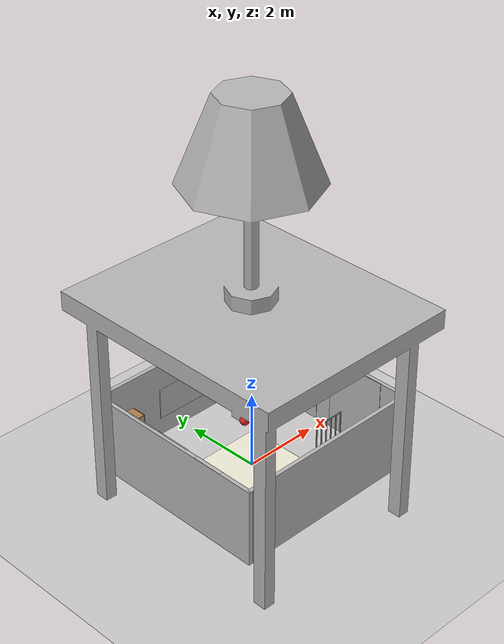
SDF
<sdf version="1.7">
 <world name="default">
  <light name="sun" type="directional">
   <pose>0 0 10 0 -0 0</pose>
   <diffuse>0.8 0.8 0.8 1</diffuse>
   <specular>0.2 0.2 0.2 1</specular>
   <attenuation>
    <range>1000</range>
    <constant>0.9</constant>
    <linear>0.01</linear>
    <quadratic>0.001</quadratic>
   </attenuation>
   <direction>-0.5 0.1 -0.9</direction>
   <spot><inner_angle>0</inner_angle><outer_angle>0</outer_angle><falloff>0</falloff></spot>
  </light>
  <model name="ground_plane">
   <static>1</static>
   <link name="link">
    <collision name="collision">
     <geometry><plane><normal>0 0 1</normal><size>100 100</size></plane></geometry>
     <surface>
      <contact><collide_bitmask>65535</collide_bitmask></contact>
      <friction><ode><mu>100</mu><mu2>50</mu2></ode></friction>
     </surface>
    </collision>
    <visual name="visual">
     <cast_shadows>0</cast_shadows>
     <geometry><plane><normal>0 0 1</normal><size>1 1</size></plane></geometry>
     <material>
      <script><uri>file://media/materials/scripts/gazebo.material</uri><name>Gazebo/Grey</name></script>
     </material>
    </visual>
   </link>
  </model>
  <gravity>0 0 -9.8</gravity>
  <magnetic_field>6e-06 2.3e-05 -4.2e-05</magnetic_field>
  <atmosphere type="adiabatic"/>
  <physics type="ode">
   <max_step_size>0.001</max_step_size>
   <real_time_factor>1</real_time_factor>
   <real_time_update_rate>1000</real_time_update_rate>
  </physics>
  <scene><ambient>0.4 0.4 0.4 1</ambient><background>0.7 0.7 0.7 1</background><shadows>1</shadows></scene>
  <audio><device>default</device></audio>
  <spherical_coordinates>
   <surface_model>EARTH_WGS84</surface_model>
   <latitude_deg>0</latitude_deg>
   <longitude_deg>0</longitude_deg>
   <elevation>0</elevation>
   <heading_deg>0</heading_deg>
  </spherical_coordinates>
  <model name="living_room"><static>0</static><pose>-1.83596 1.40391 0 0 -0 0</pose></model>
  <model name="tv_65in_emissive">
   <link name="link">
    <visual name="visual">
     <geometry><box><size>0.05 1.45 0.83</size></box></geometry>
     <material>
      <script>
       <uri>model://tv_65in_emissive/material/script</uri>
       <uri>model://tv_65in_emissive/material/textures</uri>
       <name>Custom/tv_emissive</name>
      </script>
     </material>
    </visual>
   </link>
   <static>1</static>
   <pose>0 2.4 0.9 0 -0 1.5707</pose>
  </model>
  <model name="Bookshelf">
   <static>1</static>
   <link name="link">
    <inertial><mass>1</mass></inertial>
    <collision name="back">
     <pose>0 0.005 0.6 0 -0 0</pose>
     <geometry><box><size>0.9 0.01 1.2</size></box></geometry>
    </collision>
    <visual name="visual1">
     <pose>0 0.005 0.6 0 -0 0</pose>
     <geometry><box><size>0.9 0.01 1.2</size></box></geometry>
     <material>
      <diffuse>1 1 1 1</diffuse>
      <script><uri>file://media/materials/scripts/gazebo.material</uri><name>Gazebo/Wood</name></script>
      <pbr><metal><albedo_map>model://Bookshelf/bookshelf_diffuse.jpg</albedo_map></metal></pbr>
     </material>
    </visual>
    <collision name="left_side">
     <pose>0.45 -0.195 0.6 0 -0 0</pose>
     <geometry><box><size>0.02 0.4 1.2</size></box></geometry>
    </collision>
    <visual name="visual2">
     <pose>0.45 -0.195 0.6 0 -0 0</pose>
     <geometry><box><size>0.02 0.4 1.2</size></box></geometry>
     <material>
      <diffuse>1 1 1 1</diffuse>
      <script><uri>file://media/materials/scripts/gazebo.material</uri><name>Gazebo/Wood</name></script>
      <pbr><metal><albedo_map>model://Bookshelf/bookshelf_diffuse.jpg</albedo_map></metal></pbr>
     </material>
    </visual>
    <collision name="right_side">
     <pose>-0.45 -0.195 0.6 0 -0 0</pose>
     <geometry><box><size>0.02 0.4 1.2</size></box></geometry>
    </collision>
    <visual name="visual3">
     <pose>-0.45 -0.195 0.6 0 -0 0</pose>
     <geometry><box><size>0.02 0.4 1.2</size></box></geometry>
     <material>
      <diffuse>1 1 1 1</diffuse>
      <script><uri>file://media/materials/scripts/gazebo.material</uri><name>Gazebo/Wood</name></script>
      <pbr><metal><albedo_map>model://Bookshelf/bookshelf_diffuse.jpg</albedo_map></metal></pbr>
     </material>
    </visual>
    <collision name="bottom">
     <pose>0 -0.195 0.03 0 -0 0</pose>
     <geometry><box><size>0.88 0.4 0.06</size></box></geometry>
    </collision>
    <visual name="visual4">
     <pose>0 -0.195 0.03 0 -0 0</pose>
     <geometry><box><size>0.88 0.4 0.06</size></box></geometry>
     <material>
      <diffuse>1 1 1 1</diffuse>
      <script><uri>file://media/materials/scripts/gazebo.material</uri><name>Gazebo/Wood</name></script>
      <pbr><metal><albedo_map>model://Bookshelf/bookshelf_diffuse.jpg</albedo_map></metal></pbr>
     </material>
    </visual>
    <collision name="top">
     <pose>0 -0.195 1.19 0 -0 0</pose>
     <geometry><box><size>0.88 0.4 0.02</size></box></geometry>
    </collision>
    <visual name="visual5">
     <pose>0 -0.195 1.19 0 -0 0</pose>
     <geometry><box><size>0.88 0.4 0.02</size></box></geometry>
     <material>
      <diffuse>1 1 1 1</diffuse>
      <script><uri>file://media/materials/scripts/gazebo.material</uri><name>Gazebo/Wood</name></script>
      <pbr><metal><albedo_map>model://Bookshelf/bookshelf_diffuse.jpg</albedo_map></metal></pbr>
     </material>
    </visual>
    <collision name="low_shelf">
     <pose>0 -0.195 0.43 0 -0 0</pose>
     <geometry><box><size>0.88 0.4 0.02</size></box></geometry>
    </collision>
    <visual name="visual6">
     <pose>0 -0.195 0.43 0 -0 0</pose>
     <geometry><box><size>0.88 0.4 0.02</size></box></geometry>
     <material>
      <diffuse>1 1 1 1</diffuse>
      <script><uri>file://media/materials/scripts/gazebo.material</uri><name>Gazebo/Wood</name></script>
      <pbr><metal><albedo_map>model://Bookshelf/bookshelf_diffuse.jpg</albedo_map></metal></pbr>
     </material>
    </visual>
    <collision name="high_shelf">
     <pose>0 -0.195 0.8 0 -0 0</pose>
     <geometry><box><size>0.88 0.4 0.02</size></box></geometry>
    </collision>
    <visual name="visual7">
     <pose>0 -0.195 0.8 0 -0 0</pose>
     <geometry><box><size>0.88 0.4 0.02</size></box></geometry>
     <material>
      <diffuse>1 1 1 1</diffuse>
      <script><uri>file://media/materials/scripts/gazebo.material</uri><name>Gazebo/Wood</name></script>
      <pbr><metal><albedo_map>model://Bookshelf/bookshelf_diffuse.jpg</albedo_map></metal></pbr>
     </material>
    </visual>
   </link>
   <pose>-2 2.4 0 0 -0 0</pose>
  </model>
  <model name="cabinet">
   <static>1</static>
   <link name="cabinet_bottom_plate">
    <inertial>
     <pose>0 0 -1 0 -0 0</pose>
     <inertia><ixx>2.05</ixx><ixy>0</ixy><ixz>0</ixz><iyy>2.05</iyy><iyz>0</iyz><izz>2.05</izz></inertia>
     <mass>25</mass>
    </inertial>
    <collision name="cabinet_bottom_plate_geom">
     <pose>0 0 0.01 0 -0 0</pose>
     <geometry><box><size>0.45 0.45 0.02</size></box></geometry>
    </collision>
    <visual name="cabinet_bottom_plate_geom_visual">
     <pose>0 0 0.01 0 -0 0</pose>
     <geometry><box><size>0.45 0.45 0.02</size></box></geometry>
     <material>
      <script><uri>file://media/materials/scripts/gazebo.material</uri><name>Gazebo/Wood</name></script>
     </material>
    </visual>
    <collision name="cabinet_bottom_plate_geom_cabinet_back_plate">
     <pose>0.235 0 0.51 0 -0 0</pose>
     <geometry><box><size>0.02 0.45 1.02</size></box></geometry>
    </collision>
    <visual name="cabinet_bottom_plate_geom_cabinet_back_plate_visual">
     <pose>0.235 0 0.51 0 -0 0</pose>
     <geometry><box><size>0.02 0.45 1.02</size></box></geometry>
     <material>
      <script><uri>file://media/materials/scripts/gazebo.material</uri><name>Gazebo/Wood</name></script>
     </material>
    </visual>
    <collision name="cabinet_bottom_plate_geom_cabinet_left_plate">
     <pose>0 0.235 0.51 0 -0 0</pose>
     <geometry><box><size>0.45 0.02 1.02</size></box></geometry>
    </collision>
    <visual name="cabinet_bottom_plate_geom_cabinet_left_plate_visual">
     <pose>0 0.235 0.51 0 -0 0</pose>
     <geometry><box><size>0.45 0.02 1.02</size></box></geometry>
     <material>
      <script><uri>file://media/materials/scripts/gazebo.material</uri><name>Gazebo/Wood</name></script>
     </material>
    </visual>
    <collision name="cabinet_bottom_plate_geom_cabinet_middle_plate">
     <pose>0 0 0.51 0 -0 0</pose>
     <geometry><box><size>0.45 0.45 0.02</size></box></geometry>
    </collision>
    <visual name="cabinet_bottom_plate_geom_cabinet_middle_plate_visual">
     <pose>0 0 0.51 0 -0 0</pose>
     <geometry><box><size>0.45 0.45 0.02</size></box></geometry>
     <material>
      <script><uri>file://media/materials/scripts/gazebo.material</uri><name>Gazebo/Wood</name></script>
     </material>
    </visual>
    <collision name="cabinet_bottom_plate_geom_cabinet_right_plate">
     <pose>0 -0.235 0.51 0 -0 0</pose>
     <geometry><box><size>0.45 0.02 1.02</size></box></geometry>
    </collision>
    <visual name="cabinet_bottom_plate_geom_cabinet_right_plate_visual">
     <pose>0 -0.235 0.51 0 -0 0</pose>
     <geometry><box><size>0.45 0.02 1.02</size></box></geometry>
     <material>
      <script><uri>file://media/materials/scripts/gazebo.material</uri><name>Gazebo/Wood</name></script>
     </material>
    </visual>
    <collision name="cabinet_bottom_plate_geom_cabinet_top_plate">
     <pose>0 0 1.01 0 -0 0</pose>
     <geometry><box><size>0.45 0.45 0.02</size></box></geometry>
    </collision>
    <visual name="cabinet_bottom_plate_geom_cabinet_top_plate_visual">
     <pose>0 0 1.01 0 -0 0</pose>
     <geometry><box><size>0.45 0.45 0.02</size></box></geometry>
     <material>
      <script><uri>file://media/materials/scripts/gazebo.material</uri><name>Gazebo/Wood</name></script>
     </material>
    </visual>
   </link>
   <pose>2.21 2.17 0 0 -0 1.5707</pose>
  </model>
  <model name="door_08x2m">
   <link name="link">
    <visual name="visual">
     <geometry><box><size>0.1 0.8 2</size></box></geometry>
     <material>
      <script>
       <uri>model://door_08x2m/material/script</uri>
       <uri>model://door_08x2m/material/textures</uri>
       <name>Custom/door_08x2m</name>
      </script>
     </material>
    </visual>
   </link>
   <static>1</static>
   <pose>-2.495 -1.2 1 0 -0 0</pose>
  </model>
  <model name="rug_ivory_2m">
   <link name="link">
    <visual name="visual">
     <geometry><box><size>1.6 2 0.005</size></box></geometry>
     <material>
      <script>
       <uri>model://rug_ivory_2m/material/script</uri>
       <uri>model://rug_ivory_2m/material/textures</uri>
       <name>Custom/rug_ivory_2m</name>
      </script>
     </material>
    </visual>
   </link>
   <static>1</static>
   <pose>0 0.15 0 0 -0 1.5707</pose>
  </model>
  <model name="kaiaai_poster">
   <link name="link">
    <visual name="visual">
     <geometry><box><size>0.03 0.9782 1</size></box></geometry>
     <material>
      <script>
       <uri>model://kaiaai_poster/material/script</uri>
       <uri>model://kaiaai_poster/material/textures</uri>
       <name>Custom/kaiaai</name>
      </script>
     </material>
    </visual>
   </link>
   <static>1</static>
   <pose>-2.45 0 1.5 0 -0 0</pose>
  </model>
  <model name="makerspet_poster">
   <link name="link">
    <visual name="visual">
     <geometry><box><size>0.03 0.85714 1</size></box></geometry>
     <material>
      <script>
       <uri>model://makerspet_poster/material/script</uri>
       <uri>model://makerspet_poster/material/textures</uri>
       <name>Custom/makerspet</name>
      </script>
     </material>
    </visual>
   </link>
   <static>1</static>
   <pose>-2.45 1 1.5 0 -0 0</pose>
  </model>
  <model name="window_curtains">
   <link name="link">
    <visual name="visual">
     <geometry><box><size>0.02 1.5676 2</size></box></geometry>
     <material>
      <script>
       <uri>model://window_curtains/material/script</uri>
       <uri>model://window_curtains/material/textures</uri>
       <name>Custom/window_curtains</name>
      </script>
      <emissive>0 1 0 1</emissive>
     </material>
    </visual>
   </link>
   <static>1</static>
   <pose>2.45 1 1 0 -0 0</pose>
  </model>
  <model name="window_curtains_0">
   <link name="link">
    <visual name="visual">
     <geometry><box><size>0.02 1.5676 2</size></box></geometry>
     <material>
      <script>
       <uri>model://window_curtains/material/script</uri>
       <uri>model://window_curtains/material/textures</uri>
       <name>Custom/window_curtains</name>
      </script>
      <emissive>0 1 0 1</emissive>
     </material>
    </visual>
   </link>
   <static>1</static>
   <pose>2.45 -1 1 0 -0 0</pose>
  </model>
  <model name="red_ball_10in">
   <pose>1 1.25 0.127 0 -0 0</pose>
   <link name="link">
    <inertial>
     <mass>0.213</mass>
     <inertia>
      <ixx>0.00322667</ixx>
      <ixy>0</ixy>
      <ixz>0</ixz>
      <iyy>0.00322667</iyy>
      <iyz>0</iyz>
      <izz>0.00322667</izz>
     </inertia>
    </inertial>
    <visual name="visual">
     <geometry><sphere><radius>0.127</radius></sphere></geometry>
     <material>
      <script><uri>file://media/materials/scripts/gazebo.material</uri><name>Gazebo/Red</name></script>
     </material>
    </visual>
    <collision name="collision">
     <geometry><sphere><radius>0.127</radius></sphere></geometry>
     <surface>
      <bounce><restitution_coefficient>0.15937</restitution_coefficient><threshold>0</threshold></bounce>
      <contact><ode><max_vel>100</max_vel><min_depth>0.001</min_depth></ode></contact>
     </surface>
    </collision>
   </link>
  </model>
  <model name="room_wall_2x5m">
   <link name="link">
    <visual name="visual">
     <geometry><box><size>0.1 5 2</size></box></geometry>
     <material>
      <script>
       <uri>model://room_wall_2x5m/material/script</uri>
       <uri>model://room_wall_2x5m/material/textures</uri>
       <name>Custom/room_wall_2x5m</name>
      </script>
     </material>
    </visual>
    <collision name="collision"><geometry><box><size>0.1 5 2</size></box></geometry></collision>
   </link>
   <static>1</static>
   <pose>-2.5 0 1 0 -0 0</pose>
  </model>
  <model name="room_wall_2x5m_0">
   <link name="link">
    <visual name="visual">
     <geometry><box><size>0.1 5 2</size></box></geometry>
     <material>
      <script>
       <uri>model://room_wall_2x5m/material/script</uri>
       <uri>model://room_wall_2x5m/material/textures</uri>
       <name>Custom/room_wall_2x5m</name>
      </script>
     </material>
    </visual>
    <collision name="collision"><geometry><box><size>0.1 5 2</size></box></geometry></collision>
   </link>
   <static>1</static>
   <pose>2.5 0 1 0 -0 0</pose>
  </model>
  <model name="room_wall_2x5m_1">
   <link name="link">
    <visual name="visual">
     <geometry><box><size>0.1 5 2</size></box></geometry>
     <material>
      <script>
       <uri>model://room_wall_2x5m/material/script</uri>
       <uri>model://room_wall_2x5m/material/textures</uri>
       <name>Custom/room_wall_2x5m</name>
      </script>
     </material>
    </visual>
    <collision name="collision"><geometry><box><size>0.1 5 2</size></box></geometry></collision>
   </link>
   <static>1</static>
   <pose>0 2.45 1 0 -0 1.5707</pose>
  </model>
  <model name="room_wall_2x5m_2">
   <link name="link">
    <visual name="visual">
     <geometry><box><size>0.1 5 2</size></box></geometry>
     <material>
      <script>
       <uri>model://room_wall_2x5m/material/script</uri>
       <uri>model://room_wall_2x5m/material/textures</uri>
       <name>Custom/room_wall_2x5m</name>
      </script>
     </material>
    </visual>
    <collision name="collision"><geometry><box><size>0.1 5 2</size></box></geometry></collision>
   </link>
   <static>1</static>
   <pose>0 -2.45 1 0 -0 1.5707</pose>
  </model>
  <model name="LampAndStand">
   <static>1</static>
   <link name="body">
    <visual name="visual">
     <geometry><mesh><uri>model://LampAndStand/meshes/LampAndStand.obj</uri></mesh></geometry>
    </visual>
    <collision name="collision">
     <geometry><mesh><uri>model://LampAndStand/meshes/LampAndStand.obj</uri></mesh></geometry>
    </collision>
   </link>
   <pose>-1 -1 0 0 -0 1.5707</pose>
  </model>
  <model name="pet_gate_wide">
   <static>1</static>
   <link name="link">
    <collision name="bar1_collision">
     <pose>0 0 0.381 0 -0 0</pose>
     <geometry><box><size>0.0254 0.0254 0.7366</size></box></geometry>
    </collision>
    <visual name="bar1_visual">
     <pose>0 0 0.381 0 -0 0</pose>
     <geometry><box><size>0.0254 0.0254 0.7366</size></box></geometry>
     <material>
      <script><uri>file://media/materials/scripts/gazebo.material</uri><name>Gazebo/Grey</name></script>
     </material>
    </visual>
    <collision name="bar2_collision">
     <pose>0.1651 0 0.381 0 -0 0</pose>
     <geometry><box><size>0.0254 0.0254 0.7366</size></box></geometry>
    </collision>
    <visual name="bar2_visual">
     <pose>0.1651 0 0.381 0 -0 0</pose>
     <geometry><box><size>0.0254 0.0254 0.7366</size></box></geometry>
     <material>
      <script><uri>file://media/materials/scripts/gazebo.material</uri><name>Gazebo/Grey</name></script>
     </material>
    </visual>
    <collision name="bar3_collision">
     <pose>0.3302 0 0.381 0 -0 0</pose>
     <geometry><box><size>0.0254 0.0254 0.7366</size></box></geometry>
    </collision>
    <visual name="bar3_visual">
     <pose>0.3302 0 0.381 0 -0 0</pose>
     <geometry><box><size>0.0254 0.0254 0.7366</size></box></geometry>
     <material>
      <script><uri>file://media/materials/scripts/gazebo.material</uri><name>Gazebo/Grey</name></script>
     </material>
    </visual>
    <collision name="bar4_collision">
     <pose>0.4953 0 0.381 0 -0 0</pose>
     <geometry><box><size>0.0254 0.0254 0.7366</size></box></geometry>
    </collision>
    <visual name="bar4_visual">
     <pose>0.4953 0 0.381 0 -0 0</pose>
     <geometry><box><size>0.0254 0.0254 0.7366</size></box></geometry>
     <material>
      <script><uri>file://media/materials/scripts/gazebo.material</uri><name>Gazebo/Grey</name></script>
     </material>
    </visual>
    <collision name="bar5_collision">
     <pose>0.6604 0 0.381 0 -0 0</pose>
     <geometry><box><size>0.0254 0.0254 0.7366</size></box></geometry>
    </collision>
    <visual name="bar5_visual">
     <pose>0.6604 0 0.381 0 -0 0</pose>
     <geometry><box><size>0.0254 0.0254 0.7366</size></box></geometry>
     <material>
      <script><uri>file://media/materials/scripts/gazebo.material</uri><name>Gazebo/Grey</name></script>
     </material>
    </visual>
    <collision name="bar6_collision">
     <pose>0.8255 0 0.381 0 -0 0</pose>
     <geometry><box><size>0.0254 0.0254 0.7366</size></box></geometry>
    </collision>
    <visual name="bar6_visual">
     <pose>0.8255 0 0.381 0 -0 0</pose>
     <geometry><box><size>0.0254 0.0254 0.7366</size></box></geometry>
     <material>
      <script><uri>file://media/materials/scripts/gazebo.material</uri><name>Gazebo/Grey</name></script>
     </material>
    </visual>
    <collision name="bar7_collision">
     <pose>0.9906 0 0.381 0 -0 0</pose>
     <geometry><box><size>0.0254 0.0254 0.7366</size></box></geometry>
    </collision>
    <visual name="bar7_visual">
     <pose>0.9906 0 0.381 0 -0 0</pose>
     <geometry><box><size>0.0254 0.0254 0.7366</size></box></geometry>
     <material>
      <script><uri>file://media/materials/scripts/gazebo.material</uri><name>Gazebo/Grey</name></script>
     </material>
    </visual>
    <collision name="bar8_collision">
     <pose>1.1557 0 0.381 0 -0 0</pose>
     <geometry><box><size>0.0254 0.0254 0.7366</size></box></geometry>
    </collision>
    <visual name="bar8_visual">
     <pose>1.1557 0 0.381 0 -0 0</pose>
     <geometry><box><size>0.0254 0.0254 0.7366</size></box></geometry>
     <material>
      <script><uri>file://media/materials/scripts/gazebo.material</uri><name>Gazebo/Grey</name></script>
     </material>
    </visual>
    <collision name="bar9_collision">
     <pose>1.3208 0 0.381 0 -0 0</pose>
     <geometry><box><size>0.0254 0.0254 0.7366</size></box></geometry>
    </collision>
    <visual name="bar9_visual">
     <pose>1.3208 0 0.381 0 -0 0</pose>
     <geometry><box><size>0.0254 0.0254 0.7366</size></box></geometry>
     <material>
      <script><uri>file://media/materials/scripts/gazebo.material</uri><name>Gazebo/Grey</name></script>
     </material>
    </visual>
    <collision name="bar10_collision">
     <pose>1.4859 0 0.381 0 -0 0</pose>
     <geometry><box><size>0.0254 0.0254 0.7366</size></box></geometry>
    </collision>
    <visual name="bar10_visual">
     <pose>1.4859 0 0.381 0 -0 0</pose>
     <geometry><box><size>0.0254 0.0254 0.7366</size></box></geometry>
     <material>
      <script><uri>file://media/materials/scripts/gazebo.material</uri><name>Gazebo/Grey</name></script>
     </material>
    </visual>
    <collision name="bar11_collision">
     <pose>1.651 0 0.381 0 -0 0</pose>
     <geometry><box><size>0.0254 0.0254 0.7366</size></box></geometry>
    </collision>
    <visual name="bar11_visual">
     <pose>1.651 0 0.381 0 -0 0</pose>
     <geometry><box><size>0.0254 0.0254 0.7366</size></box></geometry>
     <material>
      <script><uri>file://media/materials/scripts/gazebo.material</uri><name>Gazebo/Grey</name></script>
     </material>
    </visual>
    <collision name="top_rail_collision">
     <pose>0.8255 0 0.7493 0 -0 0</pose>
     <geometry><box><size>1.6764 0.0254 0.0254</size></box></geometry>
    </collision>
    <visual name="top_rail_visual">
     <pose>0.8255 0 0.7493 0 -0 0</pose>
     <geometry><box><size>1.6764 0.0254 0.0254</size></box></geometry>
     <material>
      <script><uri>file://media/materials/scripts/gazebo.material</uri><name>Gazebo/Grey</name></script>
     </material>
    </visual>
    <collision name="bottom_rail_collision">
     <pose>0.8255 0 0.0127 0 -0 0</pose>
     <geometry><box><size>1.6764 0.0254 0.0254</size></box></geometry>
    </collision>
    <visual name="bottom_rail_visual">
     <pose>0.8255 0 0.0127 0 -0 0</pose>
     <geometry><box><size>1.6764 0.0254 0.0254</size></box></geometry>
     <material>
      <script><uri>file://media/materials/scripts/gazebo.material</uri><name>Gazebo/Grey</name></script>
     </material>
    </visual>
   </link>
   <pose>-2.3 -1.67768 0 0 -0 0</pose>
  </model>
  <model name="pet_gate">
   <static>1</static>
   <link name="link">
    <collision name="bar1_collision">
     <pose>0 0 0.381 0 -0 0</pose>
     <geometry><box><size>0.0254 0.0254 0.7366</size></box></geometry>
    </collision>
    <visual name="bar1_visual">
     <pose>0 0 0.381 0 -0 0</pose>
     <geometry><box><size>0.0254 0.0254 0.7366</size></box></geometry>
     <material>
      <script><uri>file://media/materials/scripts/gazebo.material</uri><name>Gazebo/Grey</name></script>
     </material>
    </visual>
    <collision name="bar2_collision">
     <pose>0.1651 0 0.381 0 -0 0</pose>
     <geometry><box><size>0.0254 0.0254 0.7366</size></box></geometry>
    </collision>
    <visual name="bar2_visual">
     <pose>0.1651 0 0.381 0 -0 0</pose>
     <geometry><box><size>0.0254 0.0254 0.7366</size></box></geometry>
     <material>
      <script><uri>file://media/materials/scripts/gazebo.material</uri><name>Gazebo/Grey</name></script>
     </material>
    </visual>
    <collision name="bar3_collision">
     <pose>0.3302 0 0.381 0 -0 0</pose>
     <geometry><box><size>0.0254 0.0254 0.7366</size></box></geometry>
    </collision>
    <visual name="bar3_visual">
     <pose>0.3302 0 0.381 0 -0 0</pose>
     <geometry><box><size>0.0254 0.0254 0.7366</size></box></geometry>
     <material>
      <script><uri>file://media/materials/scripts/gazebo.material</uri><name>Gazebo/Grey</name></script>
     </material>
    </visual>
    <collision name="bar4_collision">
     <pose>0.4953 0 0.381 0 -0 0</pose>
     <geometry><box><size>0.0254 0.0254 0.7366</size></box></geometry>
    </collision>
    <visual name="bar4_visual">
     <pose>0.4953 0 0.381 0 -0 0</pose>
     <geometry><box><size>0.0254 0.0254 0.7366</size></box></geometry>
     <material>
      <script><uri>file://media/materials/scripts/gazebo.material</uri><name>Gazebo/Grey</name></script>
     </material>
    </visual>
    <collision name="bar5_collision">
     <pose>0.6604 0 0.381 0 -0 0</pose>
     <geometry><box><size>0.0254 0.0254 0.7366</size></box></geometry>
    </collision>
    <visual name="bar5_visual">
     <pose>0.6604 0 0.381 0 -0 0</pose>
     <geometry><box><size>0.0254 0.0254 0.7366</size></box></geometry>
     <material>
      <script><uri>file://media/materials/scripts/gazebo.material</uri><name>Gazebo/Grey</name></script>
     </material>
    </visual>
    <collision name="bar6_collision">
     <pose>0.8255 0 0.381 0 -0 0</pose>
     <geometry><box><size>0.0254 0.0254 0.7366</size></box></geometry>
    </collision>
    <visual name="bar6_visual">
     <pose>0.8255 0 0.381 0 -0 0</pose>
     <geometry><box><size>0.0254 0.0254 0.7366</size></box></geometry>
     <material>
      <script><uri>file://media/materials/scripts/gazebo.material</uri><name>Gazebo/Grey</name></script>
     </material>
    </visual>
    <collision name="top_rail_collision">
     <pose>0.41275 0 0.7493 0 -0 0</pose>
     <geometry><box><size>0.8509 0.0254 0.0254</size></box></geometry>
    </collision>
    <visual name="top_rail_visual">
     <pose>0.41275 0 0.7493 0 -0 0</pose>
     <geometry><box><size>0.8509 0.0254 0.0254</size></box></geometry>
     <material>
      <script><uri>file://media/materials/scripts/gazebo.material</uri><name>Gazebo/Grey</name></script>
     </material>
    </visual>
    <collision name="bottom_rail_collision">
     <pose>0.41275 0 0.0127 0 -0 0</pose>
     <geometry><box><size>0.8509 0.0254 0.0254</size></box></geometry>
    </collision>
    <visual name="bottom_rail_visual">
     <pose>0.41275 0 0.0127 0 -0 0</pose>
     <geometry><box><size>0.8509 0.0254 0.0254</size></box></geometry>
     <material>
      <script><uri>file://media/materials/scripts/gazebo.material</uri><name>Gazebo/Grey</name></script>
     </material>
    </visual>
   </link>
   <pose>1.44509 -0.733036 0 0 -0 0</pose>
  </model>
 </world>
</sdf>
